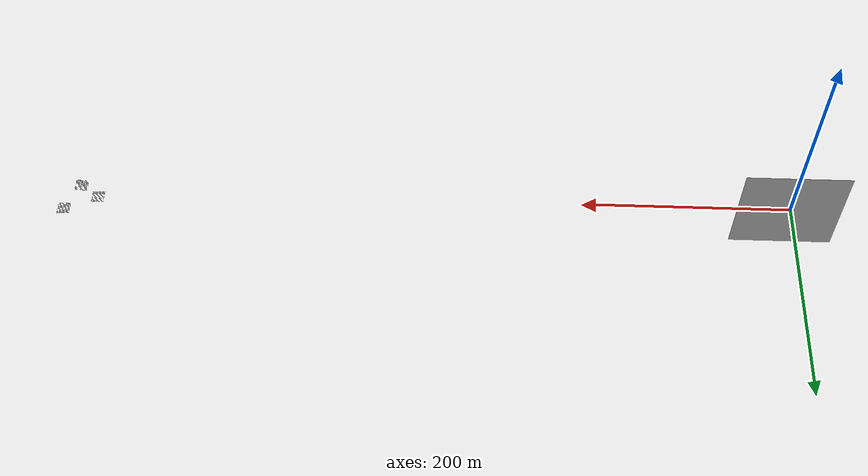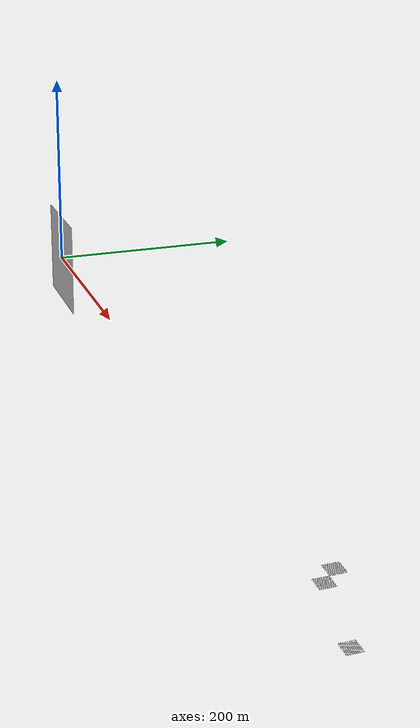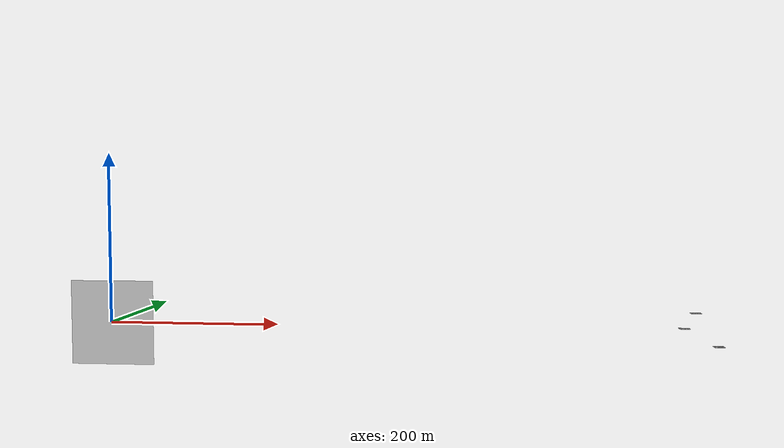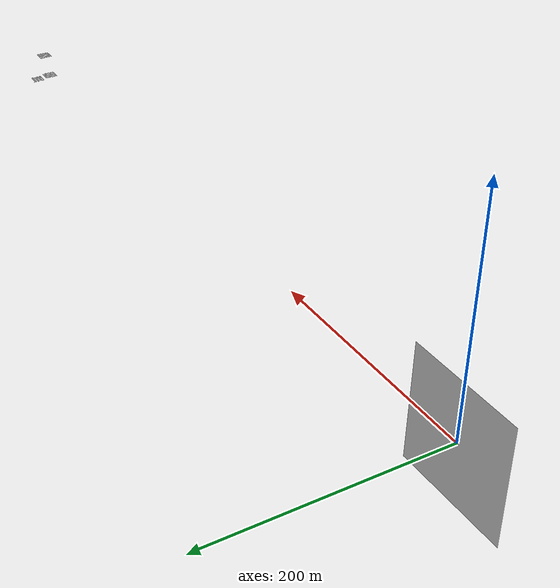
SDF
<?xml version="1.0" ?>
<sdf version="1.6">
    <model name="OFICIAL_PLANE">
        <pose>0 0 0.5 0 0 0</pose>
        <static>true</static>
        <link name="link">
            <collision name="collision">
                <geometry>
                    <mesh>
                        <uri>model://OFICIAL_PLANE/meshes/plane.obj</uri>
                        <scale>3 3 3</scale>
                    </mesh>
                </geometry>
            </collision>
            <visual name="visual">
                <geometry>
                    <mesh>
                        <uri>model://OFICIAL_PLANE/meshes/plane.obj</uri>
                        <scale>3 3 3</scale>
                    </mesh>
                </geometry>
            </visual>
        </link>
    </model>
</sdf>
